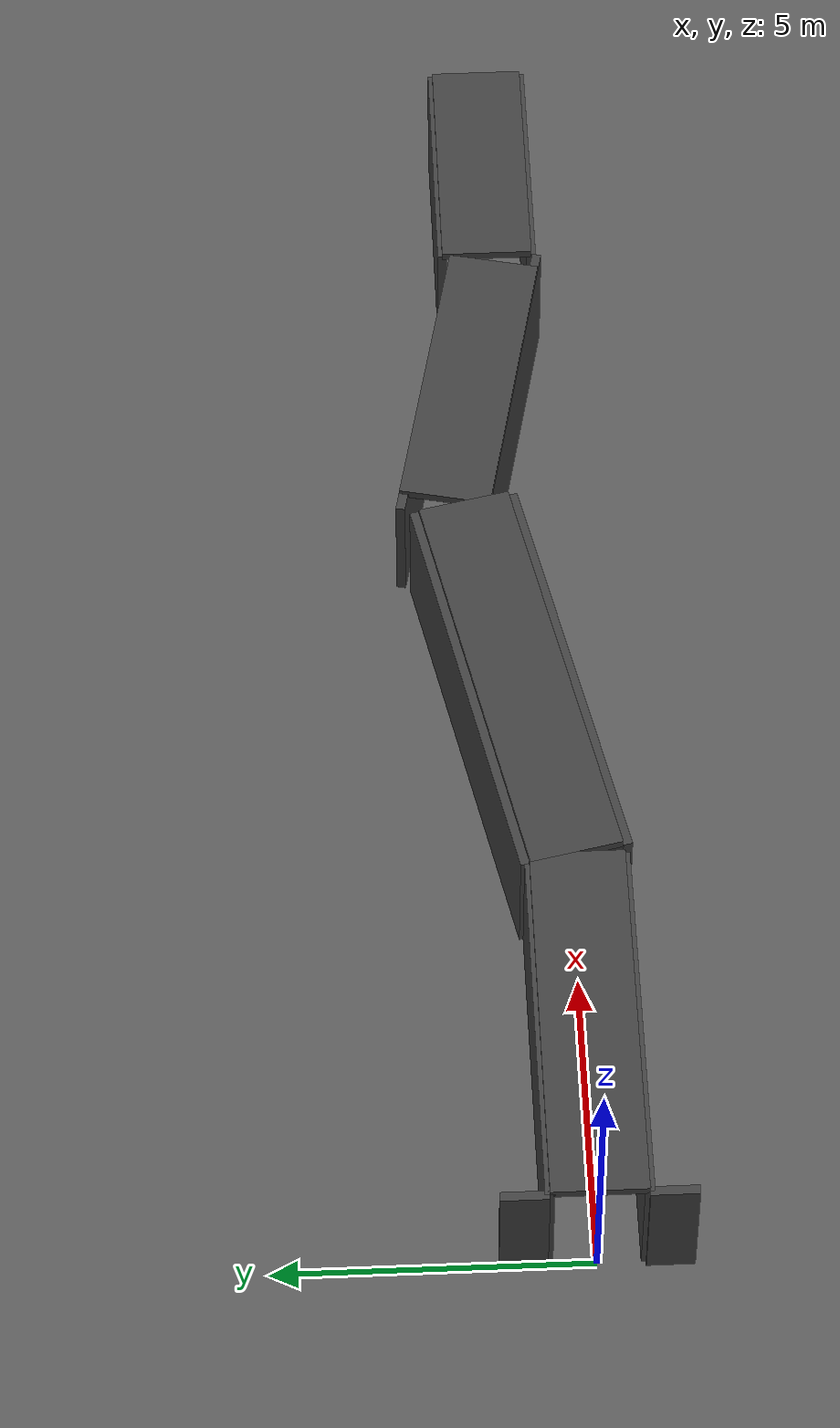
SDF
<?xml version="1.0"?>
<sdf version="1.6">
  <world name="tunnel_world">

    <!-- ── Physics ─────────────────────────────────────────────────────── -->
    <physics type="ode">
      <max_step_size>0.001</max_step_size>
      <real_time_factor>1.0</real_time_factor>
      <real_time_update_rate>1000</real_time_update_rate>
    </physics>

    <!-- ── Dim sun (underground feel) ──────────────────────────────────── -->
    <light name="sun" type="directional">
      <cast_shadows>false</cast_shadows>
      <pose>0 0 10 0 0 0</pose>
      <diffuse>0.15 0.15 0.15 1</diffuse>
      <specular>0.05 0.05 0.05 1</specular>
      <direction>0 0 -1</direction>
    </light>

    <!-- ── 5 sparse tunnel lights ──────────────────────────────────────── -->
    <light name="tunnel_light_1" type="point">
      <pose>2.0 0 2.0 0 0 0</pose>
      <diffuse>0.8 0.75 0.6 1</diffuse>
      <specular>0.1 0.1 0.1 1</specular>
      <attenuation>
        <range>8</range>
        <constant>0.4</constant>
        <linear>0.12</linear>
        <quadratic>0.03</quadratic>
      </attenuation>
    </light>

    <light name="tunnel_light_2" type="point">
      <pose>6.0 0 2.0 0 0 0</pose>
      <diffuse>0.8 0.75 0.6 1</diffuse>
      <specular>0.1 0.1 0.1 1</specular>
      <attenuation>
        <range>8</range>
        <constant>0.4</constant>
        <linear>0.12</linear>
        <quadratic>0.03</quadratic>
      </attenuation>
    </light>

    <light name="tunnel_light_3" type="point">
      <pose>11.0 1.24 2.0 0 0 0</pose>
      <diffuse>0.8 0.75 0.6 1</diffuse>
      <specular>0.1 0.1 0.1 1</specular>
      <attenuation>
        <range>8</range>
        <constant>0.4</constant>
        <linear>0.12</linear>
        <quadratic>0.03</quadratic>
      </attenuation>
    </light>

    <light name="tunnel_light_4" type="point">
      <pose>16.0 1.03 2.0 0 0 0</pose>
      <diffuse>0.8 0.75 0.6 1</diffuse>
      <specular>0.1 0.1 0.1 1</specular>
      <attenuation>
        <range>8</range>
        <constant>0.4</constant>
        <linear>0.12</linear>
        <quadratic>0.03</quadratic>
      </attenuation>
    </light>

    <light name="tunnel_light_5" type="point">
      <pose>20.0 0.83 2.0 0 0 0</pose>
      <diffuse>0.8 0.75 0.6 1</diffuse>
      <specular>0.1 0.1 0.1 1</specular>
      <attenuation>
        <range>8</range>
        <constant>0.4</constant>
        <linear>0.12</linear>
        <quadratic>0.03</quadratic>
      </attenuation>
    </light>

    <!-- ── Ground plane ────────────────────────────────────────────────── -->
    <model name="ground">
      <static>true</static>
      <link name="link">
        <collision name="col">
          <geometry>
            <plane>
              <normal>0 0 1</normal>
              <size>30 10</size>
            </plane>
          </geometry>
          <surface>
            <friction>
              <ode><mu>1.0</mu><mu2>1.0</mu2></ode>
            </friction>
          </surface>
        </collision>
        <visual name="vis">
          <geometry>
            <plane>
              <normal>0 0 1</normal>
              <size>30 10</size>
            </plane>
          </geometry>
          <material>
            <ambient>0.35 0.35 0.35 1</ambient>
            <diffuse>0.35 0.35 0.35 1</diffuse>
          </material>
        </visual>
      </link>
    </model>

    <model name="tunnel">
      <static>true</static>

      <!-- ── Segment 1: 6m straight, heading 0° ─────────────────────── -->
      <!-- Center: (3, 0), yaw: 0 -->
      <link name="seg1_left">
        <pose>3.0 0.75 1.1 0 0 0</pose>
        <collision name="col">
          <geometry><box><size>6.0 0.15 2.2</size></box></geometry>
        </collision>
        <visual name="vis">
          <geometry><box><size>6.0 0.15 2.2</size></box></geometry>
          <material>
            <ambient>0.25 0.25 0.25 1</ambient>
            <diffuse>0.25 0.25 0.25 1</diffuse>
          </material>
        </visual>
      </link>

      <link name="seg1_right">
        <pose>3.0 -0.75 1.1 0 0 0</pose>
        <collision name="col">
          <geometry><box><size>6.0 0.15 2.2</size></box></geometry>
        </collision>
        <visual name="vis">
          <geometry><box><size>6.0 0.15 2.2</size></box></geometry>
          <material>
            <ambient>0.25 0.25 0.25 1</ambient>
            <diffuse>0.25 0.25 0.25 1</diffuse>
          </material>
        </visual>
      </link>

      <link name="seg1_ceiling">
        <pose>3.0 0 2.2 0 0 0</pose>
        <collision name="col">
          <geometry><box><size>6.0 1.5 0.15</size></box></geometry>
        </collision>
        <visual name="vis">
          <geometry><box><size>6.0 1.5 0.15</size></box></geometry>
          <material>
            <ambient>0.25 0.25 0.25 1</ambient>
            <diffuse>0.25 0.25 0.25 1</diffuse>
          </material>
        </visual>
      </link>

      <!-- ── Segment 2: 7m at +12° ──────────────────────────────────── -->
      <!-- Center: (9.42, 0.73), yaw: 0.2094 -->
      <link name="seg2_left">
        <pose>9.27 1.54 1.1 0 0 0.2094</pose>
        <collision name="col">
          <geometry><box><size>7.0 0.15 2.2</size></box></geometry>
        </collision>
        <visual name="vis">
          <geometry><box><size>7.0 0.15 2.2</size></box></geometry>
          <material>
            <ambient>0.25 0.25 0.25 1</ambient>
            <diffuse>0.25 0.25 0.25 1</diffuse>
          </material>
        </visual>
      </link>

      <link name="seg2_right">
        <pose>9.57 -0.08 1.1 0 0 0.2094</pose>
        <collision name="col">
          <geometry><box><size>7.0 0.15 2.2</size></box></geometry>
        </collision>
        <visual name="vis">
          <geometry><box><size>7.0 0.15 2.2</size></box></geometry>
          <material>
            <ambient>0.25 0.25 0.25 1</ambient>
            <diffuse>0.25 0.25 0.25 1</diffuse>
          </material>
        </visual>
      </link>

      <link name="seg2_ceiling">
        <pose>9.42 0.73 2.2 0 0 0.2094</pose>
        <collision name="col">
          <geometry><box><size>7.0 1.5 0.15</size></box></geometry>
        </collision>
        <visual name="vis">
          <geometry><box><size>7.0 1.5 0.15</size></box></geometry>
          <material>
            <ambient>0.25 0.25 0.25 1</ambient>
            <diffuse>0.25 0.25 0.25 1</diffuse>
          </material>
        </visual>
      </link>

      <!-- ── Segment 3: 5m at -12° ──────────────────────────────────── -->
      <!-- Center: (15.38, 1.24), yaw: -0.2094 -->
      <link name="seg3_left">
        <pose>15.22 1.97 1.1 0 0 -0.2094</pose>
        <collision name="col">
          <geometry><box><size>5.0 0.15 2.2</size></box></geometry>
        </collision>
        <visual name="vis">
          <geometry><box><size>5.0 0.15 2.2</size></box></geometry>
          <material>
            <ambient>0.25 0.25 0.25 1</ambient>
            <diffuse>0.25 0.25 0.25 1</diffuse>
          </material>
        </visual>
      </link>

      <link name="seg3_right">
        <pose>15.54 0.51 1.1 0 0 -0.2094</pose>
        <collision name="col">
          <geometry><box><size>5.0 0.15 2.2</size></box></geometry>
        </collision>
        <visual name="vis">
          <geometry><box><size>5.0 0.15 2.2</size></box></geometry>
          <material>
            <ambient>0.25 0.25 0.25 1</ambient>
            <diffuse>0.25 0.25 0.25 1</diffuse>
          </material>
        </visual>
      </link>

      <link name="seg3_ceiling">
        <pose>15.38 1.24 2.2 0 0 -0.2094</pose>
        <collision name="col">
          <geometry><box><size>5.0 1.5 0.15</size></box></geometry>
        </collision>
        <visual name="vis">
          <geometry><box><size>5.0 1.5 0.15</size></box></geometry>
          <material>
            <ambient>0.25 0.25 0.25 1</ambient>
            <diffuse>0.25 0.25 0.25 1</diffuse>
          </material>
        </visual>
      </link>

      <!-- ── Segment 4: 4m straight, heading 0° ─────────────────────── -->
      <!-- Center: (20.0, 0.83), yaw: 0 -->
      <link name="seg4_left">
        <pose>20.0 1.58 1.1 0 0 0</pose>
        <collision name="col">
          <geometry><box><size>4.0 0.15 2.2</size></box></geometry>
        </collision>
        <visual name="vis">
          <geometry><box><size>4.0 0.15 2.2</size></box></geometry>
          <material>
            <ambient>0.25 0.25 0.25 1</ambient>
            <diffuse>0.25 0.25 0.25 1</diffuse>
          </material>
        </visual>
      </link>

      <link name="seg4_right">
        <pose>20.0 0.08 1.1 0 0 0</pose>
        <collision name="col">
          <geometry><box><size>4.0 0.15 2.2</size></box></geometry>
        </collision>
        <visual name="vis">
          <geometry><box><size>4.0 0.15 2.2</size></box></geometry>
          <material>
            <ambient>0.25 0.25 0.25 1</ambient>
            <diffuse>0.25 0.25 0.25 1</diffuse>
          </material>
        </visual>
      </link>

      <link name="seg4_ceiling">
        <pose>20.0 0.83 2.2 0 0 0</pose>
        <collision name="col">
          <geometry><box><size>4.0 1.5 0.15</size></box></geometry>
        </collision>
        <visual name="vis">
          <geometry><box><size>4.0 1.5 0.15</size></box></geometry>
          <material>
            <ambient>0.25 0.25 0.25 1</ambient>
            <diffuse>0.25 0.25 0.25 1</diffuse>
          </material>
        </visual>
      </link>

      <!-- ── Entry wall (back wall at x=0, with opening) ────────────── -->
      <!-- Left of entry -->
      <link name="entry_left">
        <pose>0 1.125 1.1 0 0 0</pose>
        <collision name="col">
          <geometry><box><size>0.15 0.75 2.2</size></box></geometry>
        </collision>
        <visual name="vis">
          <geometry><box><size>0.15 0.75 2.2</size></box></geometry>
          <material>
            <ambient>0.25 0.25 0.25 1</ambient>
            <diffuse>0.25 0.25 0.25 1</diffuse>
          </material>
        </visual>
      </link>

      <!-- Right of entry -->
      <link name="entry_right">
        <pose>0 -1.125 1.1 0 0 0</pose>
        <collision name="col">
          <geometry><box><size>0.15 0.75 2.2</size></box></geometry>
        </collision>
        <visual name="vis">
          <geometry><box><size>0.15 0.75 2.2</size></box></geometry>
          <material>
            <ambient>0.25 0.25 0.25 1</ambient>
            <diffuse>0.25 0.25 0.25 1</diffuse>
          </material>
        </visual>
      </link>

    </model>

  </world>
</sdf>
